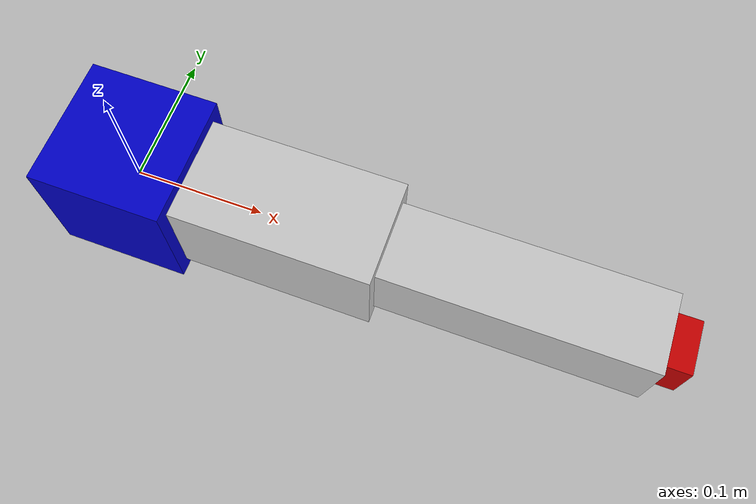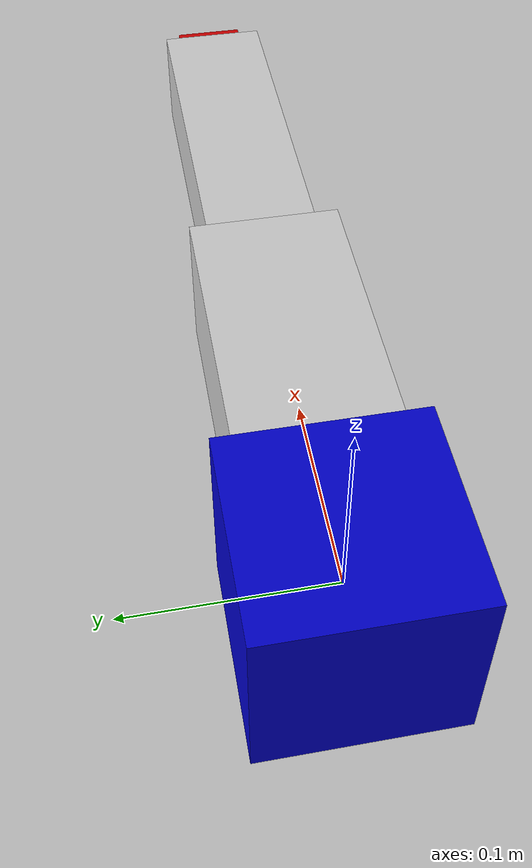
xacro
<?xml version="1.0"?>
<robot name="3dof_manipulator" xmlns:xacro="http://www.ros.org/wiki/xacro">

  <xacro:include filename="$(find layered_hardware)/examples/common/description/materials.xacro" />
  <xacro:include filename="$(find layered_hardware)/examples/3dof_manipulator/description/model.xacro" />
  <xacro:include filename="$(find layered_hardware)/examples/3dof_manipulator/description/ros2_control.xacro" />

</robot>

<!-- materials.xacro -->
<robot>

    <material name="black">
        <color rgba="${0/255} ${0/255} ${0/255} 1.0"/>
    </material>

    <material name="blue">
        <color rgba="${0/255} ${0/255} ${204/255} 1.0"/>
    </material>

    <material name="green">
        <color rgba="${0/255} ${204/255} ${0/255} 1.0"/>
    </material>

    <material name="dark_grey">
        <color rgba="${51/255} ${51/255} ${51/255} 1.0"/>
    </material>

    <material name="light_grey">
        <color rgba="${204/255} ${204/255} ${204/255} 1.0"/>
    </material>

    <material name="orange">
        <color rgba="${255/255} ${108/255} ${10/255} 1.0"/>
    </material>

    <material name="brown">
        <color rgba="${222/255} ${207/255} ${195/255} 1.0"/>
    </material>

    <material name="red">
        <color rgba="${204/255} ${0/255} ${0/255} 1.0"/>
    </material>

    <material name="yellow">
        <color rgba="${255/255} ${255/255} ${0/255} 1.0"/>
    </material>

    <material name="white">
        <color rgba="${255/255} ${255/255} ${255/255} 1.0"/>
    </material>

</robot>

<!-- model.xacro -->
<robot>

    <!-- body => [shoulder] => upper_arm -->

    <link name="body">
        <visual>
            <geometry>
                <box size="0.10 0.10 0.10" />
            </geometry>
            <material name="blue" />
        </visual>
    </link>

    <joint name="shoulder" type="revolute">
        <origin xyz="0 0 0" />
        <parent link="body" />
        <child link="upper_arm" />
        <axis xyz="0 -1 0" />
        <limit lower="0" upper="3.14" effort="10.0" velocity="1.0" />
    </joint>

    <link name="upper_arm">
        <visual>
            <origin xyz="0.1 0 0" />
            <geometry>
                <box size="0.20 0.08 0.08" />
            </geometry>
            <material name="light_grey" />
        </visual>
    </link>

    <!-- upper_arm => [elbow] => forearm -->

    <joint name="elbow" type="continuous">
        <origin xyz="0.2 0 0" />
        <parent link="upper_arm" />
        <child link="forearm" />
        <axis xyz="0 -1 0" />
    </joint>

    <link name="forearm">
        <visual>
            <origin xyz="0.1 0 0" />
            <geometry>
                <box size="0.20 0.06 0.06" />
            </geometry>
            <material name="light_grey" />
        </visual>
    </link>

    <!-- forearm => [wrist] => hand -->

    <joint name="wrist" type="revolute">
        <origin xyz="0.2 0 0" />
        <parent link="forearm" />
        <child link="hand" />
        <axis xyz="0 -1 0" />
        <limit lower="-1.0" upper="1.0" effort="10.0" velocity="1.0" />
    </joint>

    <link name="hand">
        <visual>
            <geometry>
                <box size="0.04 0.04 0.04" />
            </geometry>
            <material name="red" />
        </visual>
    </link>

</robot>
